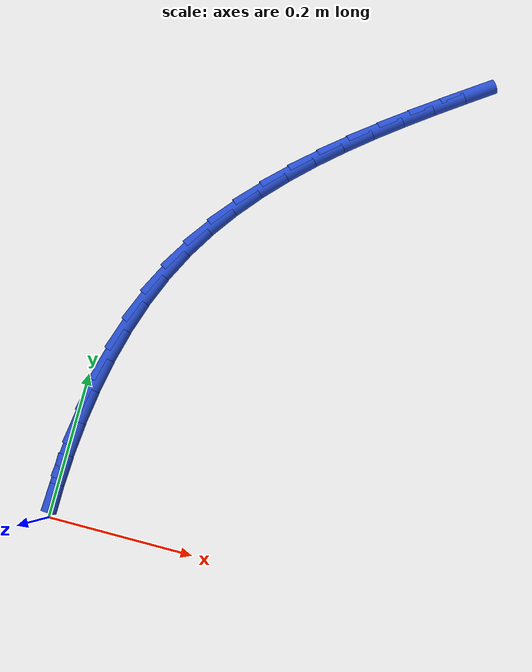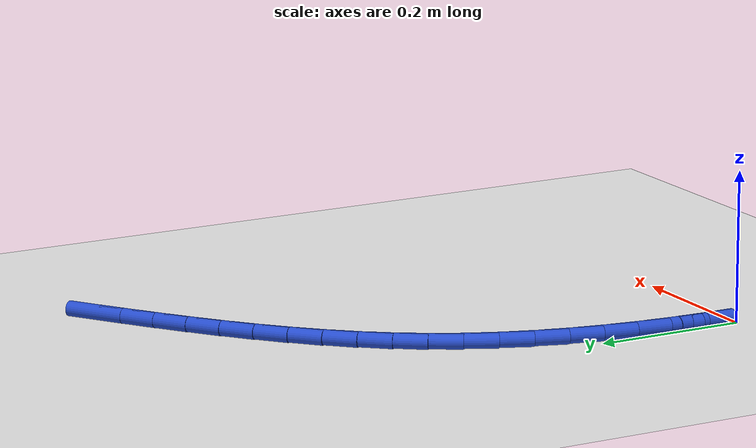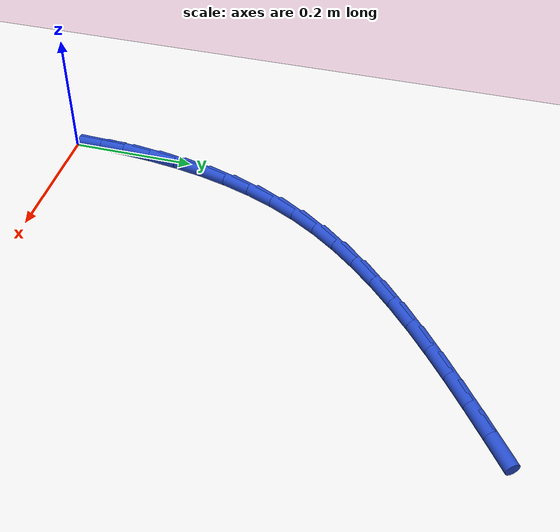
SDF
<sdf version="1.6">
 <world name="default">
  <model name="ground_plane">
   <static>1</static>
   <link name="link">
    <collision name="collision">
     <geometry><plane><normal>0 0 1</normal><size>100 100</size></plane></geometry>
     <surface><friction><ode><mu>100</mu><mu2>50</mu2></ode></friction></surface>
    </collision>
    <visual name="visual">
     <cast_shadows>0</cast_shadows>
     <geometry><plane><normal>0 0 1</normal><size>100 100</size></plane></geometry>
     <material>
      <script><uri>file://media/materials/scripts/gazebo.material</uri><name>Gazebo/WhiteGlow</name></script>
     </material>
    </visual>
   </link>
  </model>
  <model name="line">
   <link name="link_1">
    <pose>0.00021987925278518322 0.046796753615262934 0.01 0 1.57 1.524984169871335</pose>
    <collision name="collision">
     <geometry><cylinder><radius>0.01</radius><length>0.08</length></cylinder></geometry>
    </collision>
    <visual name="visual">
     <material>
      <script><name>Gazebo/Blue</name><uri>file://media/materials/scripts/gazebo.material</uri></script>
     </material>
     <geometry><cylinder><radius>0.01</radius><length>0.08</length></cylinder></geometry>
    </visual>
   </link>
   <link name="link_2">
    <pose>0.002365007465326923 0.09358842307314467 0.01 0 1.57 1.480142805591467</pose>
    <collision name="collision">
     <geometry><cylinder><radius>0.01</radius><length>0.08</length></cylinder></geometry>
    </collision>
    <visual name="visual">
     <material>
      <script><name>Gazebo/Blue</name><uri>file://media/materials/scripts/gazebo.material</uri></script>
     </material>
     <geometry><cylinder><radius>0.01</radius><length>0.08</length></cylinder></geometry>
    </visual>
   </link>
   <link name="link_3">
    <pose>0.006593358067236434 0.14010356387969447 0.01 0 1.57 1.4309719699759842</pose>
    <collision name="collision">
     <geometry><cylinder><radius>0.01</radius><length>0.08</length></cylinder></geometry>
    </collision>
    <visual name="visual">
     <material>
      <script><name>Gazebo/Blue</name><uri>file://media/materials/scripts/gazebo.material</uri></script>
     </material>
     <geometry><cylinder><radius>0.01</radius><length>0.08</length></cylinder></geometry>
    </visual>
   </link>
   <link name="link_4">
    <pose>0.013062904488124982 0.18607073154096132 0.01 0 1.57 1.3768284861886906</pose>
    <collision name="collision">
     <geometry><cylinder><radius>0.01</radius><length>0.08</length></cylinder></geometry>
    </collision>
    <visual name="visual">
     <material>
      <script><name>Gazebo/Blue</name><uri>file://media/materials/scripts/gazebo.material</uri></script>
     </material>
     <geometry><cylinder><radius>0.01</radius><length>0.08</length></cylinder></geometry>
    </visual>
   </link>
   <link name="link_5">
    <pose>0.021931620157603825 0.23121848156299446 0.01 0 1.57 1.3170434919180674</pose>
    <collision name="collision">
     <geometry><cylinder><radius>0.01</radius><length>0.08</length></cylinder></geometry>
    </collision>
    <visual name="visual">
     <material>
      <script><name>Gazebo/Blue</name><uri>file://media/materials/scripts/gazebo.material</uri></script>
     </material>
     <geometry><cylinder><radius>0.01</radius><length>0.08</length></cylinder></geometry>
    </visual>
   </link>
   <link name="link_6">
    <pose>0.03335747850528421 0.27527536945184294 0.01 0 1.57 1.2509558311294542</pose>
    <collision name="collision">
     <geometry><cylinder><radius>0.01</radius><length>0.08</length></cylinder></geometry>
    </collision>
    <visual name="visual">
     <material>
      <script><name>Gazebo/Blue</name><uri>file://media/materials/scripts/gazebo.material</uri></script>
     </material>
     <geometry><cylinder><radius>0.01</radius><length>0.08</length></cylinder></geometry>
    </visual>
   </link>
   <link name="link_7">
    <pose>0.0474984529607774 0.3179699507135559 0.01 0 1.57 1.1779702136256727</pose>
    <collision name="collision">
     <geometry><cylinder><radius>0.01</radius><length>0.08</length></cylinder></geometry>
    </collision>
    <visual name="visual">
     <material>
      <script><name>Gazebo/Blue</name><uri>file://media/materials/scripts/gazebo.material</uri></script>
     </material>
     <geometry><cylinder><radius>0.01</radius><length>0.08</length></cylinder></geometry>
    </visual>
   </link>
   <link name="link_8">
    <pose>0.06451251695369466 0.35903078085418244 0.01 0 1.57 1.0977892139822525</pose>
    <collision name="collision">
     <geometry><cylinder><radius>0.01</radius><length>0.08</length></cylinder></geometry>
    </collision>
    <visual name="visual">
     <material>
      <script><name>Gazebo/Blue</name><uri>file://media/materials/scripts/gazebo.material</uri></script>
     </material>
     <geometry><cylinder><radius>0.01</radius><length>0.08</length></cylinder></geometry>
    </visual>
   </link>
   <link name="link_9">
    <pose>0.08455308652895717 0.3981912776954497 0.01 0 1.57 1.0159182845645283</pose>
    <collision name="collision">
     <geometry><cylinder><radius>0.01</radius><length>0.08</length></cylinder></geometry>
    </collision>
    <visual name="visual">
     <material>
      <script><name>Gazebo/Blue</name><uri>file://media/materials/scripts/gazebo.material</uri></script>
     </material>
     <geometry><cylinder><radius>0.01</radius><length>0.08</length></cylinder></geometry>
    </visual>
   </link>
   <link name="link_10">
    <pose>0.10759871725954913 0.43537141930623646 0.01 0 1.57 0.9404009729480616</pose>
    <collision name="collision">
     <geometry><cylinder><radius>0.01</radius><length>0.08</length></cylinder></geometry>
    </collision>
    <visual name="visual">
     <material>
      <script><name>Gazebo/Blue</name><uri>file://media/materials/scripts/gazebo.material</uri></script>
     </material>
     <geometry><cylinder><radius>0.01</radius><length>0.08</length></cylinder></geometry>
    </visual>
   </link>
   <link name="link_11">
    <pose>0.13340214096680447 0.4707321171948322 0.01 0 1.57 0.8725580928074215</pose>
    <collision name="collision">
     <geometry><cylinder><radius>0.01</radius><length>0.08</length></cylinder></geometry>
    </collision>
    <visual name="visual">
     <material>
      <script><name>Gazebo/Blue</name><uri>file://media/materials/scripts/gazebo.material</uri></script>
     </material>
     <geometry><cylinder><radius>0.01</radius><length>0.08</length></cylinder></geometry>
    </visual>
   </link>
   <link name="link_12">
    <pose>0.16170112995800667 0.5044502433127732 0.01 0 1.57 0.8127880864573401</pose>
    <collision name="collision">
     <geometry><cylinder><radius>0.01</radius><length>0.08</length></cylinder></geometry>
    </collision>
    <visual name="visual">
     <material>
      <script><name>Gazebo/Blue</name><uri>file://media/materials/scripts/gazebo.material</uri></script>
     </material>
     <geometry><cylinder><radius>0.01</radius><length>0.08</length></cylinder></geometry>
    </visual>
   </link>
   <link name="link_13">
    <pose>0.19223345654043916 0.5367026696115959 0.01 0 1.57 0.7611409089183374</pose>
    <collision name="collision">
     <geometry><cylinder><radius>0.01</radius><length>0.08</length></cylinder></geometry>
    </collision>
    <visual name="visual">
     <material>
      <script><name>Gazebo/Blue</name><uri>file://media/materials/scripts/gazebo.material</uri></script>
     </material>
     <geometry><cylinder><radius>0.01</radius><length>0.08</length></cylinder></geometry>
    </visual>
   </link>
   <link name="link_14">
    <pose>0.22473689302138564 0.5676662680428365 0.01 0 1.57 0.7174354564988649</pose>
    <collision name="collision">
     <geometry><cylinder><radius>0.01</radius><length>0.08</length></cylinder></geometry>
    </collision>
    <visual name="visual">
     <material>
      <script><name>Gazebo/Blue</name><uri>file://media/materials/scripts/gazebo.material</uri></script>
     </material>
     <geometry><cylinder><radius>0.01</radius><length>0.08</length></cylinder></geometry>
    </visual>
   </link>
   <link name="link_15">
    <pose>0.25894921170812946 0.5975179105580316 0.01 0 1.57 0.6813638303788668</pose>
    <collision name="collision">
     <geometry><cylinder><radius>0.01</radius><length>0.08</length></cylinder></geometry>
    </collision>
    <visual name="visual">
     <material>
      <script><name>Gazebo/Blue</name><uri>file://media/materials/scripts/gazebo.material</uri></script>
     </material>
     <geometry><cylinder><radius>0.01</radius><length>0.08</length></cylinder></geometry>
    </visual>
   </link>
   <link name="link_16">
    <pose>0.2946081849079543 0.6264344691087173 0.01 0 1.57 0.6525722355664001</pose>
    <collision name="collision">
     <geometry><cylinder><radius>0.01</radius><length>0.08</length></cylinder></geometry>
    </collision>
    <visual name="visual">
     <material>
      <script><name>Gazebo/Blue</name><uri>file://media/materials/scripts/gazebo.material</uri></script>
     </material>
     <geometry><cylinder><radius>0.01</radius><length>0.08</length></cylinder></geometry>
    </visual>
   </link>
   <link name="link_17">
    <pose>0.3314515849281436 0.6545928156464298 0.01 0 1.57 0.6307179911545647</pose>
    <collision name="collision">
     <geometry><cylinder><radius>0.01</radius><length>0.08</length></cylinder></geometry>
    </collision>
    <visual name="visual">
     <material>
      <script><name>Gazebo/Blue</name><uri>file://media/materials/scripts/gazebo.material</uri></script>
     </material>
     <geometry><cylinder><radius>0.01</radius><length>0.08</length></cylinder></geometry>
    </visual>
   </link>
   <link name="link_18">
    <pose>0.36921718407598075 0.6821698221227059 0.01 0 1.57 0.615506718576898</pose>
    <collision name="collision">
     <geometry><cylinder><radius>0.01</radius><length>0.08</length></cylinder></geometry>
    </collision>
    <visual name="visual">
     <material>
      <script><name>Gazebo/Blue</name><uri>file://media/materials/scripts/gazebo.material</uri></script>
     </material>
     <geometry><cylinder><radius>0.01</radius><length>0.08</length></cylinder></geometry>
    </visual>
   </link>
   <link name="link_19">
    <pose>0.40764275465874933 0.7093423604890817 0.01 0 1.57 0.606714913238149</pose>
    <collision name="collision">
     <geometry><cylinder><radius>0.01</radius><length>0.08</length></cylinder></geometry>
    </collision>
    <visual name="visual">
     <material>
      <script><name>Gazebo/Blue</name><uri>file://media/materials/scripts/gazebo.material</uri></script>
     </material>
     <geometry><cylinder><radius>0.01</radius><length>0.08</length></cylinder></geometry>
    </visual>
   </link>
   <link name="link_161">
    <pose>0.00018589220447284838 0.04682773376547232 0.01 0 1.57 1.5668266444491814</pose>
    <collision name="collision">
     <geometry><cylinder><radius>0.01</radius><length>0.08</length></cylinder></geometry>
    </collision>
    <visual name="visual">
     <material>
      <script><name>Gazebo/Blue</name><uri>file://media/materials/scripts/gazebo.material</uri></script>
     </material>
     <geometry><cylinder><radius>0.01</radius><length>0.08</length></cylinder></geometry>
    </visual>
   </link>
  </model>
 </world>
</sdf>
